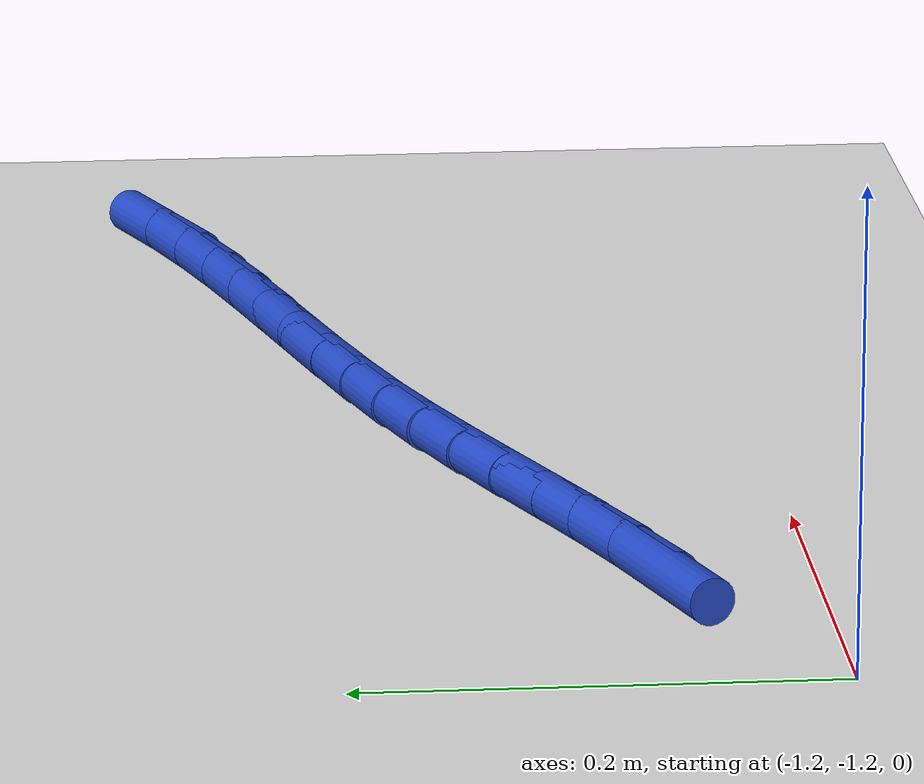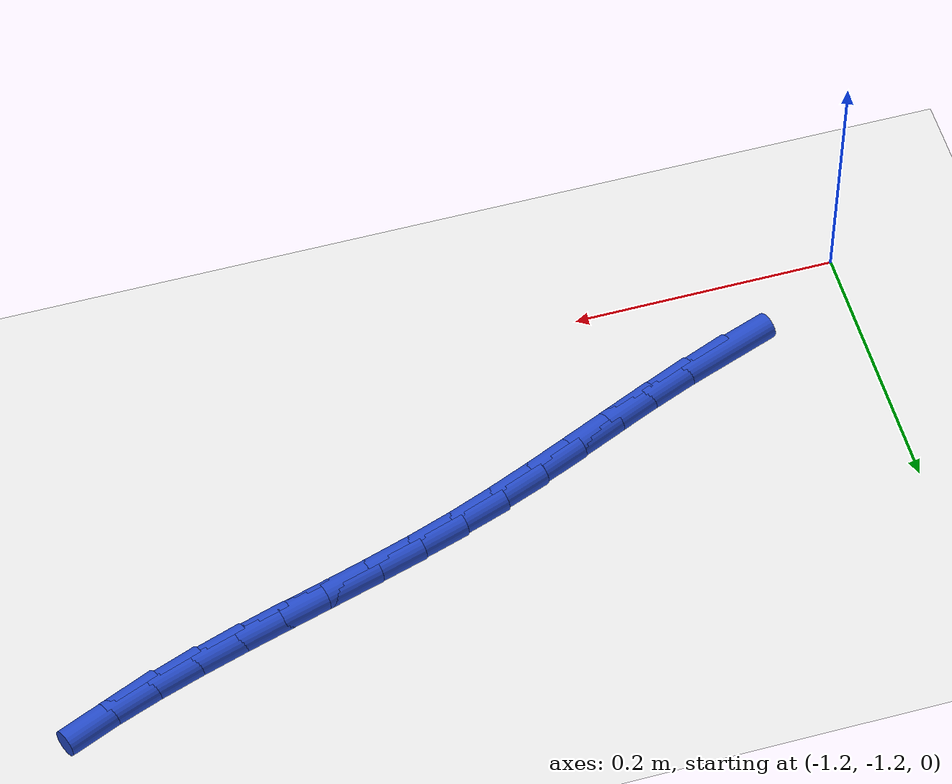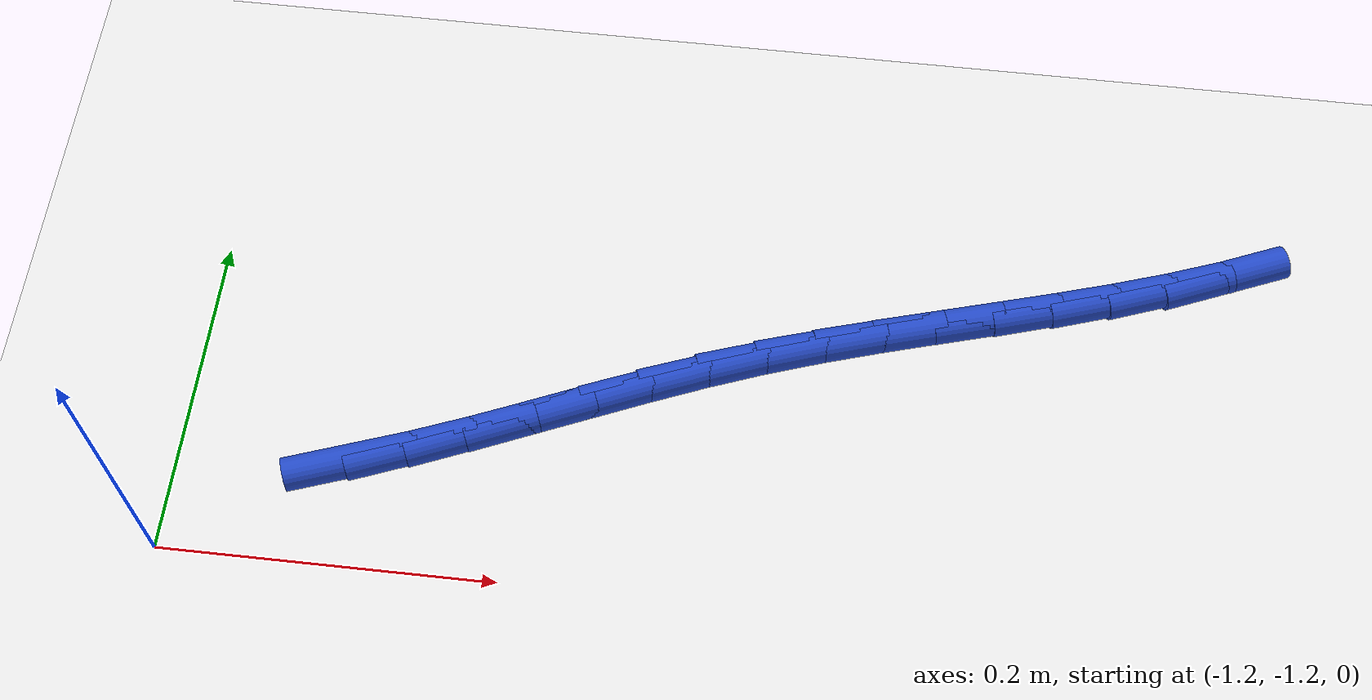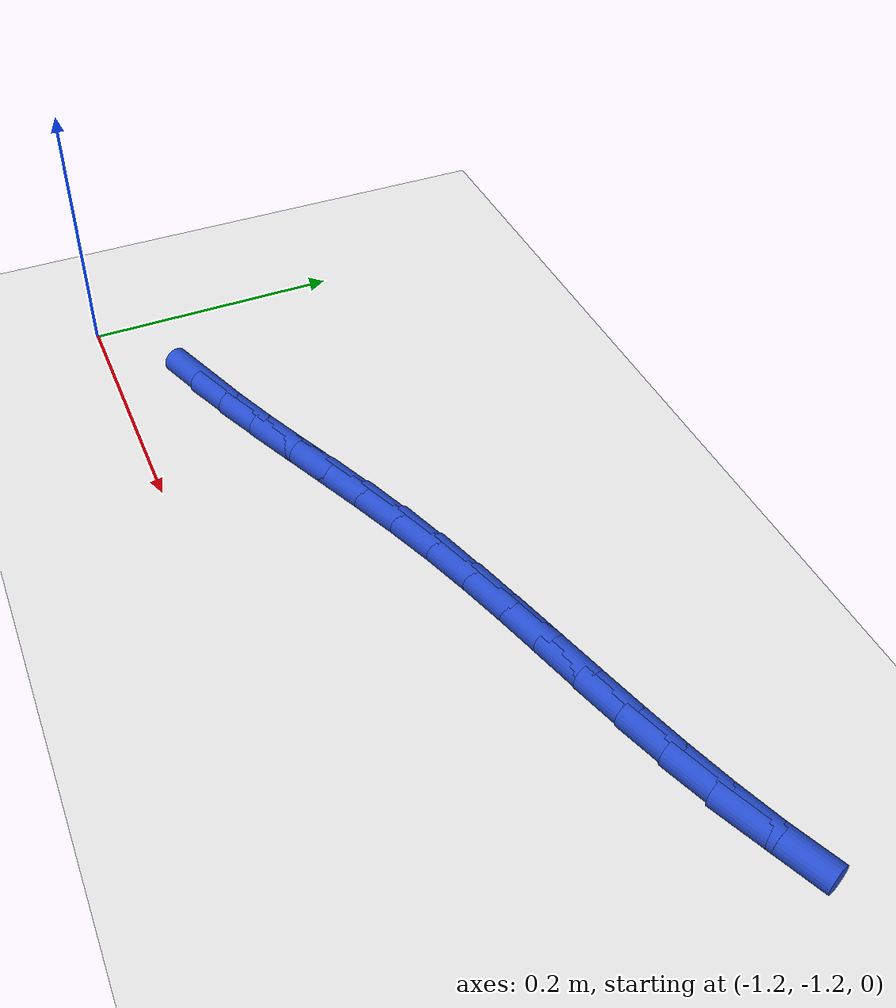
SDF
<sdf version="1.6">
 <world name="default">
  <model name="ground_plane">
   <static>1</static>
   <link name="link">
    <collision name="collision">
     <geometry><plane><normal>0 0 1</normal><size>100 100</size></plane></geometry>
     <surface><friction><ode><mu>100</mu><mu2>50</mu2></ode></friction></surface>
    </collision>
    <visual name="visual">
     <cast_shadows>0</cast_shadows>
     <geometry><plane><normal>0 0 1</normal><size>100 100</size></plane></geometry>
     <material>
      <script><uri>file://media/materials/scripts/gazebo.material</uri><name>Gazebo/WhiteGlow</name></script>
     </material>
    </visual>
   </link>
  </model>
  <model name="line">
   <link name="link_142">
    <pose>-1.0953790173792657 -1.137372228341884 0.01 0 1.57 0.3447044545694725</pose>
    <collision name="collision">
     <geometry><cylinder><radius>0.01</radius><length>0.08</length></cylinder></geometry>
    </collision>
    <visual name="visual">
     <material>
      <script><name>Gazebo/Blue</name><uri>file://media/materials/scripts/gazebo.material</uri></script>
     </material>
     <geometry><cylinder><radius>0.01</radius><length>0.08</length></cylinder></geometry>
    </visual>
   </link>
   <link name="link_143">
    <pose>-1.0620699880587101 -1.125412992349574 0.01 0 1.57 0.3801851064139962</pose>
    <collision name="collision">
     <geometry><cylinder><radius>0.01</radius><length>0.08</length></cylinder></geometry>
    </collision>
    <visual name="visual">
     <material>
      <script><name>Gazebo/Blue</name><uri>file://media/materials/scripts/gazebo.material</uri></script>
     </material>
     <geometry><cylinder><radius>0.01</radius><length>0.08</length></cylinder></geometry>
    </visual>
   </link>
   <link name="link_144">
    <pose>-1.0290606766842452 -1.1122215679319831 0.01 0 1.57 0.4026012067481981</pose>
    <collision name="collision">
     <geometry><cylinder><radius>0.01</radius><length>0.08</length></cylinder></geometry>
    </collision>
    <visual name="visual">
     <material>
      <script><name>Gazebo/Blue</name><uri>file://media/materials/scripts/gazebo.material</uri></script>
     </material>
     <geometry><cylinder><radius>0.01</radius><length>0.08</length></cylinder></geometry>
    </visual>
   </link>
   <link name="link_145">
    <pose>-0.9962124885496715 -1.098232747063265 0.01 0 1.57 0.412159811810532</pose>
    <collision name="collision">
     <geometry><cylinder><radius>0.01</radius><length>0.08</length></cylinder></geometry>
    </collision>
    <visual name="visual">
     <material>
      <script><name>Gazebo/Blue</name><uri>file://media/materials/scripts/gazebo.material</uri></script>
     </material>
     <geometry><cylinder><radius>0.01</radius><length>0.08</length></cylinder></geometry>
    </visual>
   </link>
   <link name="link_146">
    <pose>-0.9633868289487877 -1.0838813217175731 0.01 0 1.57 0.4090225767842668</pose>
    <collision name="collision">
     <geometry><cylinder><radius>0.01</radius><length>0.08</length></cylinder></geometry>
    </collision>
    <visual name="visual">
     <material>
      <script><name>Gazebo/Blue</name><uri>file://media/materials/scripts/gazebo.material</uri></script>
     </material>
     <geometry><cylinder><radius>0.01</radius><length>0.08</length></cylinder></geometry>
    </visual>
   </link>
   <link name="link_147">
    <pose>-0.9304451031753944 -1.0696020838690619 0.01 0 1.57 0.39326114379748806</pose>
    <collision name="collision">
     <geometry><cylinder><radius>0.01</radius><length>0.08</length></cylinder></geometry>
    </collision>
    <visual name="visual">
     <material>
      <script><name>Gazebo/Blue</name><uri>file://media/materials/scripts/gazebo.material</uri></script>
     </material>
     <geometry><cylinder><radius>0.01</radius><length>0.08</length></cylinder></geometry>
    </visual>
   </link>
   <link name="link_148">
    <pose>-0.8972487165232915 -1.0558298254918852 0.01 0 1.57 0.36488695349799705</pose>
    <collision name="collision">
     <geometry><cylinder><radius>0.01</radius><length>0.08</length></cylinder></geometry>
    </collision>
    <visual name="visual">
     <material>
      <script><name>Gazebo/Blue</name><uri>file://media/materials/scripts/gazebo.material</uri></script>
     </material>
     <geometry><cylinder><radius>0.01</radius><length>0.08</length></cylinder></geometry>
    </visual>
   </link>
   <link name="link_149">
    <pose>-0.8636592431863845 -1.0429988982349052 0.01 0 1.57 0.3296706445393569</pose>
    <collision name="collision">
     <geometry><cylinder><radius>0.01</radius><length>0.08</length></cylinder></geometry>
    </collision>
    <visual name="visual">
     <material>
      <script><name>Gazebo/Blue</name><uri>file://media/materials/scripts/gazebo.material</uri></script>
     </material>
     <geometry><cylinder><radius>0.01</radius><length>0.08</length></cylinder></geometry>
    </visual>
   </link>
   <link name="link_150">
    <pose>-0.8296126804846191 -1.0313496314595818 0.01 0 1.57 0.3024137999536199</pose>
    <collision name="collision">
     <geometry><cylinder><radius>0.01</radius><length>0.08</length></cylinder></geometry>
    </collision>
    <visual name="visual">
     <material>
      <script><name>Gazebo/Blue</name><uri>file://media/materials/scripts/gazebo.material</uri></script>
     </material>
     <geometry><cylinder><radius>0.01</radius><length>0.08</length></cylinder></geometry>
    </visual>
   </link>
   <link name="link_151">
    <pose>-0.795235928115095 -1.020624668957626 0.01 0 1.57 0.2853846226953037</pose>
    <collision name="collision">
     <geometry><cylinder><radius>0.01</radius><length>0.08</length></cylinder></geometry>
    </collision>
    <visual name="visual">
     <material>
      <script><name>Gazebo/Blue</name><uri>file://media/materials/scripts/gazebo.material</uri></script>
     </material>
     <geometry><cylinder><radius>0.01</radius><length>0.08</length></cylinder></geometry>
    </visual>
   </link>
   <link name="link_152">
    <pose>-0.7606860669761075 -1.0104879716434807 0.01 0 1.57 0.2785270705523664</pose>
    <collision name="collision">
     <geometry><cylinder><radius>0.01</radius><length>0.08</length></cylinder></geometry>
    </collision>
    <visual name="visual">
     <material>
      <script><name>Gazebo/Blue</name><uri>file://media/materials/scripts/gazebo.material</uri></script>
     </material>
     <geometry><cylinder><radius>0.01</radius><length>0.08</length></cylinder></geometry>
    </visual>
   </link>
   <link name="link_153">
    <pose>-0.7261201779659495 -1.0006035004315892 0.01 0 1.57 0.281857636804827</pose>
    <collision name="collision">
     <geometry><cylinder><radius>0.01</radius><length>0.08</length></cylinder></geometry>
    </collision>
    <visual name="visual">
     <material>
      <script><name>Gazebo/Blue</name><uri>file://media/materials/scripts/gazebo.material</uri></script>
     </material>
     <geometry><cylinder><radius>0.01</radius><length>0.08</length></cylinder></geometry>
    </visual>
   </link>
   <link name="link_154">
    <pose>-0.6916953419829159 -0.9906352162363942 0.01 0 1.57 0.29548773337903333</pose>
    <collision name="collision">
     <geometry><cylinder><radius>0.01</radius><length>0.08</length></cylinder></geometry>
    </collision>
    <visual name="visual">
     <material>
      <script><name>Gazebo/Blue</name><uri>file://media/materials/scripts/gazebo.material</uri></script>
     </material>
     <geometry><cylinder><radius>0.01</radius><length>0.08</length></cylinder></geometry>
    </visual>
   </link>
   <link name="link_155">
    <pose>-0.6575686399253009 -0.9802470799723391 0.01 0 1.57 0.3196160337128133</pose>
    <collision name="collision">
     <geometry><cylinder><radius>0.01</radius><length>0.08</length></cylinder></geometry>
    </collision>
    <visual name="visual">
     <material>
      <script><name>Gazebo/Blue</name><uri>file://media/materials/scripts/gazebo.material</uri></script>
     </material>
     <geometry><cylinder><radius>0.01</radius><length>0.08</length></cylinder></geometry>
    </visual>
   </link>
   <link name="link_156">
    <pose>-0.6238971526913992 -0.9691030525538668 0.01 0 1.57 0.3544878514789019</pose>
    <collision name="collision">
     <geometry><cylinder><radius>0.01</radius><length>0.08</length></cylinder></geometry>
    </collision>
    <visual name="visual">
     <material>
      <script><name>Gazebo/Blue</name><uri>file://media/materials/scripts/gazebo.material</uri></script>
     </material>
     <geometry><cylinder><radius>0.01</radius><length>0.08</length></cylinder></geometry>
    </visual>
   </link>
   <link name="link_157">
    <pose>-0.5908379611795044 -0.9568670948954197 0.01 0 1.57 0.4003155559033</pose>
    <collision name="collision">
     <geometry><cylinder><radius>0.01</radius><length>0.08</length></cylinder></geometry>
    </collision>
    <visual name="visual">
     <material>
      <script><name>Gazebo/Blue</name><uri>file://media/materials/scripts/gazebo.material</uri></script>
     </material>
     <geometry><cylinder><radius>0.01</radius><length>0.08</length></cylinder></geometry>
    </visual>
   </link>
  </model>
 </world>
</sdf>
